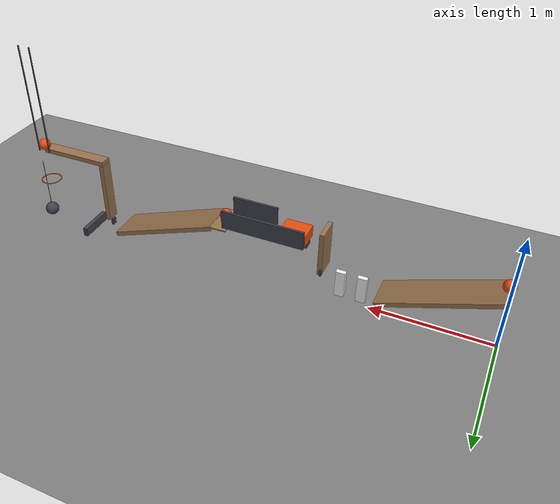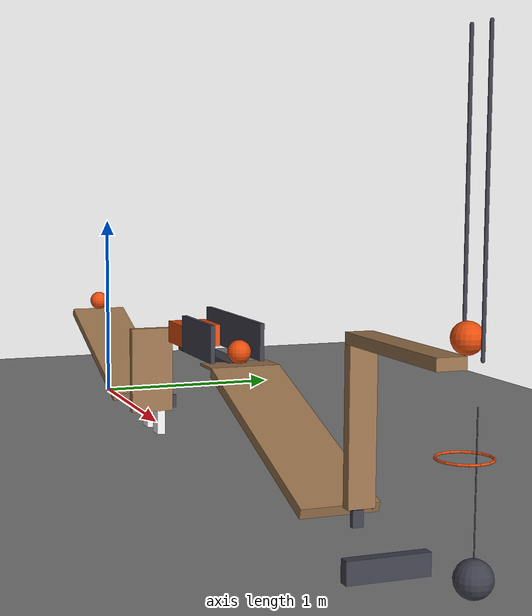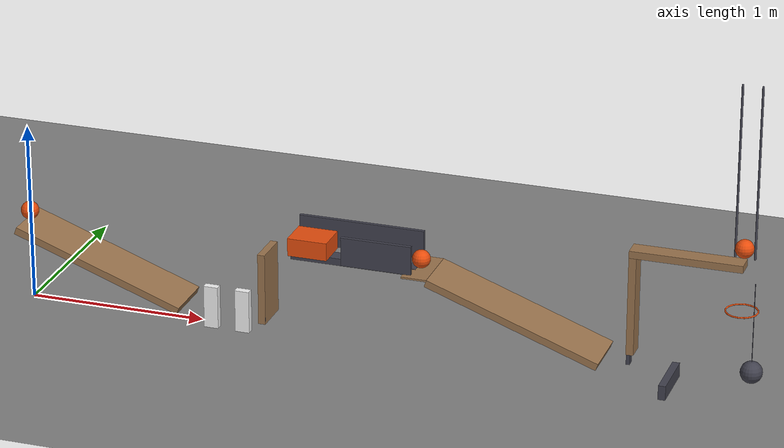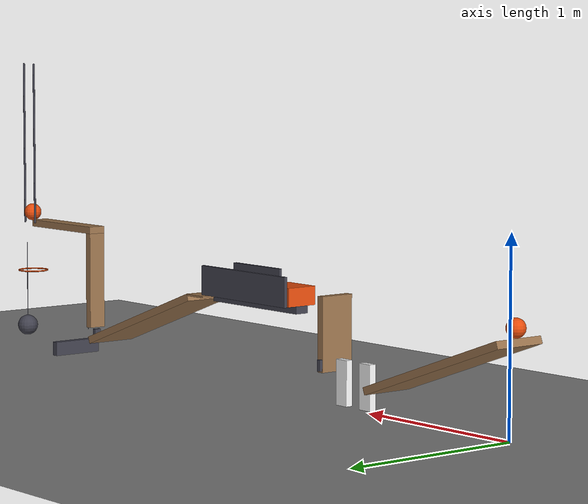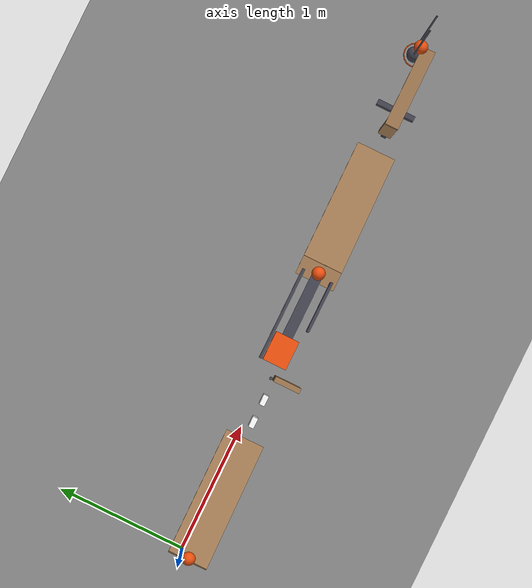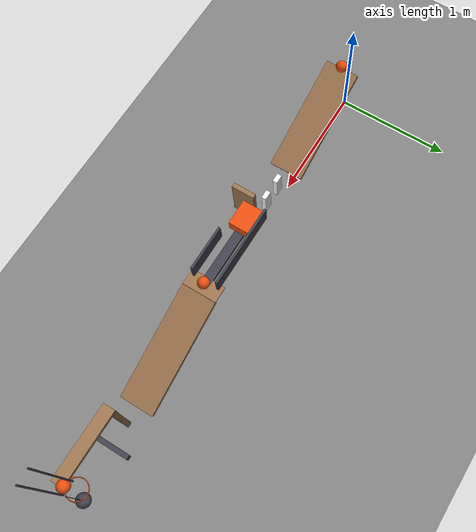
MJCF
<mujoco model="gravity_chain_catch_revision">
  <compiler angle="radian"/>
  <option timestep="0.002"/>
  <worldbody>
    <geom name="floor" type="plane" size="10 10 0.1" friction="0.7 0 0.002"/>
    <body name="ramp1">
      <geom name="ramp1" type="box" pos="0.469846 -0.06 0.302216" size="0.5 0.15 0.02" euler="0 0.349066 0" friction="0.7 0 0.002" solref="0.01 1" rgba="0.6 0.45 0.3 1"/>
    </body>
    <body name="ball1" pos="0.0239414 -0.06 0.539005">
      <freejoint/>
      <geom name="ball1" type="sphere" pos="0 0 0" size="0.05" mass="0.2" condim="6" friction="0.7 0 0.002" solref="0.01 1" rgba="0.9 0.3 0.05 1"/>
    </body>
    <body name="domino1" pos="1.07969 -0.06 0.12">
      <freejoint/>
      <geom name="domino1" type="box" pos="0 0 0" size="0.04 0.02 0.12" mass="0.25" friction="0.7 0 0.002" solref="0.01 1" rgba="0.95 0.95 0.95 1"/>
    </body>
    <body name="domino2" pos="1.25969 -0.06 0.12">
      <freejoint/>
      <geom name="domino2" type="box" pos="0 0 0" size="0.04 0.02 0.12" mass="0.25" friction="0.7 0 0.002" solref="0.01 1" rgba="0.95 0.95 0.95 1"/>
    </body>
    <body name="flap1" pos="1.43969 -0.15 0.55">
      <joint name="flap_hinge" type="hinge" pos="0 0 0" axis="0 1 0" limited="true" range="-1.13446 0.0872665" stiffness="12" springref="-1.13446" damping="0.04"/>
      <geom name="flap1" type="box" pos="0 0 -0.2" size="0.02 0.1 0.2" mass="0.3" friction="0.7 0 0.002" solref="0.01 1" rgba="0.6 0.45 0.3 1"/>
    </body>
    <body name="flap catch" pos="1.45469 -0.2497 0.18">
      <joint name="flap_catch_hinge" type="hinge" pos="0 0 0" axis="0 0 1" limited="true" range="-0.698132 0" damping="0.04"/>
      <geom name="flap catch" type="box" pos="-0.029 0.2147 0.01" size="0.01 0.01 0.03" mass="0.025" friction="0.7 0 0.002" solref="0.01 1" rgba="0.25 0.25 0.3 1"/>
      <geom name="flap catch finger" type="box" pos="0.006 -0.0012 0" size="0.001 0.001 0.01" mass="0.005" friction="0.7 0 0.002" solref="0.01 1" rgba="0.25 0.25 0.3 1"/>
    </body>
    <body name="cart track">
      <geom name="cart track" type="box" pos="1.87969 0 0.47402" size="0.35 0.04 0.02" friction="0.7 0 0.002" solref="0.01 1" rgba="0.25 0.25 0.3 1"/>
    </body>
    <body name="cart left guide">
      <geom name="cart left guide" type="box" pos="1.87969 0.11 0.57402" size="0.35 0.01 0.08" friction="0.7 0 0.002" solref="0.01 1" rgba="0.25 0.25 0.3 1"/>
    </body>
    <body name="cart right guide">
      <geom name="cart right guide" type="box" pos="2.03469 -0.11 0.57402" size="0.195 0.01 0.08" friction="0.7 0 0.002" solref="0.01 1" rgba="0.25 0.25 0.3 1"/>
    </body>
    <body name="cart1" pos="1.63969 0 0.54402">
      <freejoint/>
      <geom name="cart1" type="box" pos="0 0 0" size="0.11 0.09 0.05" mass="0.5" friction="0.7 0 0.002" solref="0.01 1" rgba="0.9 0.3 0.05 1"/>
    </body>
    <body name="ramp2">
      <geom name="ramp2" type="box" pos="2.78954 0 0.302216" size="0.5 0.15 0.02" euler="0 0.349066 0" friction="0.7 0 0.002" solref="0.01 1" rgba="0.6 0.45 0.3 1"/>
    </body>
    <body name="ball2 perch">
      <geom name="ball2 perch" type="box" pos="2.25469 0 0.48702" size="0.07 0.15 0.005" friction="0.7 0 0.002" solref="0.01 1" rgba="0.6 0.45 0.3 1"/>
    </body>
    <body name="ball2" pos="2.24969 0 0.54202">
      <freejoint/>
      <geom name="ball2" type="sphere" pos="0 0 0" size="0.05" mass="0.2" condim="6" friction="0.7 0 0.002" solref="0.01 1" rgba="0.9 0.3 0.05 1"/>
    </body>
    <body name="lever1" pos="3.68623 0 0.75">
      <joint name="lever_hinge" type="hinge" pos="0 0 0" axis="0 1 0" limited="true" range="-0.785398 0" stiffness="4" springref="-0.785398" damping="0.04"/>
      <geom name="lever1" type="box" pos="0 0 0" size="0.3 0.05 0.02" mass="0.495" friction="0.7 0 0.002" solref="0.01 1" rgba="0.6 0.45 0.3 1"/>
      <geom name="lever striker" type="box" pos="-0.28 0 -0.295" size="0.02 0.05 0.275" mass="0.005" friction="0.7 0 0.002" solref="0.01 1" rgba="0.6 0.45 0.3 1"/>
    </body>
    <body name="lever catch" pos="3.39123 0.051 0.14">
      <joint name="lever_catch_hinge" type="hinge" pos="0 0 0" axis="0 0 1" limited="true" range="0 1.5708" damping="0.04"/>
      <geom name="lever catch" type="box" pos="0 -0.051 0" size="0.01 0.02 0.03" mass="0.015" friction="0.7 0 0.002" solref="0.01 1" rgba="0.25 0.25 0.3 1"/>
      <geom name="lever catch finger" type="box" pos="0.015 -0.0005 0.035" size="0.002 0.001 0.005" mass="0.005" friction="0.7 0 0.002" solref="0.01 1" rgba="0.25 0.25 0.3 1"/>
    </body>
    <body name="ball2 arrest wall">
      <geom name="ball2 arrest wall" type="box" pos="3.61 0 0.04" size="0.02 0.15 0.04" friction="0.7 0 0.002" solref="0.01 1" rgba="0.25 0.25 0.3 1"/>
    </body>
    <body name="launch left guide">
      <geom name="launch left guide" type="capsule" size="0.006" fromto="3.91392 0.08 0.76 3.91392 0.08 1.7" friction="0.7 0 0.002" solref="0.01 1" rgba="0.25 0.25 0.3 1"/>
    </body>
    <body name="launch right guide">
      <geom name="launch right guide" type="capsule" size="0.006" fromto="4.01853 0.08 0.76 4.01853 0.08 1.7" friction="0.7 0 0.002" solref="0.01 1" rgba="0.25 0.25 0.3 1"/>
    </body>
    <body name="ball3" pos="3.96623 0.06 0.81899">
      <freejoint/>
      <geom name="ball3" type="sphere" pos="0 0 0" size="0.05" mass="0.2" condim="6" friction="0.7 0 0.002" solref="0.01 1" rgba="0.9 0.3 0.05 1"/>
    </body>
    <body name="ring1">
      <geom name="ring1_rim_00" type="capsule" size="0.004" fromto="4.05187 0.06 0.46899 4.04535 0.0927752 0.46899" friction="0.7 0 0.002" solref="0.01 1" rgba="0.9 0.3 0.05 1"/>
      <geom name="ring1_rim_01" type="capsule" size="0.004" fromto="4.04535 0.0927752 0.46899 4.02679 0.120561 0.46899" friction="0.7 0 0.002" solref="0.01 1" rgba="0.9 0.3 0.05 1"/>
      <geom name="ring1_rim_02" type="capsule" size="0.004" fromto="4.02679 0.120561 0.46899 3.999 0.139126 0.46899" friction="0.7 0 0.002" solref="0.01 1" rgba="0.9 0.3 0.05 1"/>
      <geom name="ring1_rim_03" type="capsule" size="0.004" fromto="3.999 0.139126 0.46899 3.96623 0.145646 0.46899" friction="0.7 0 0.002" solref="0.01 1" rgba="0.9 0.3 0.05 1"/>
      <geom name="ring1_rim_04" type="capsule" size="0.004" fromto="3.96623 0.145646 0.46899 3.93345 0.139126 0.46899" friction="0.7 0 0.002" solref="0.01 1" rgba="0.9 0.3 0.05 1"/>
      <geom name="ring1_rim_05" type="capsule" size="0.004" fromto="3.93345 0.139126 0.46899 3.90567 0.120561 0.46899" friction="0.7 0 0.002" solref="0.01 1" rgba="0.9 0.3 0.05 1"/>
      <geom name="ring1_rim_06" type="capsule" size="0.004" fromto="3.90567 0.120561 0.46899 3.8871 0.0927752 0.46899" friction="0.7 0 0.002" solref="0.01 1" rgba="0.9 0.3 0.05 1"/>
      <geom name="ring1_rim_07" type="capsule" size="0.004" fromto="3.8871 0.0927752 0.46899 3.88058 0.06 0.46899" friction="0.7 0 0.002" solref="0.01 1" rgba="0.9 0.3 0.05 1"/>
      <geom name="ring1_rim_08" type="capsule" size="0.004" fromto="3.88058 0.06 0.46899 3.8871 0.0272248 0.46899" friction="0.7 0 0.002" solref="0.01 1" rgba="0.9 0.3 0.05 1"/>
      <geom name="ring1_rim_09" type="capsule" size="0.004" fromto="3.8871 0.0272248 0.46899 3.90567 -0.000560625 0.46899" friction="0.7 0 0.002" solref="0.01 1" rgba="0.9 0.3 0.05 1"/>
      <geom name="ring1_rim_10" type="capsule" size="0.004" fromto="3.90567 -0.000560625 0.46899 3.93345 -0.0191263 0.46899" friction="0.7 0 0.002" solref="0.01 1" rgba="0.9 0.3 0.05 1"/>
      <geom name="ring1_rim_11" type="capsule" size="0.004" fromto="3.93345 -0.0191263 0.46899 3.96623 -0.0256457 0.46899" friction="0.7 0 0.002" solref="0.01 1" rgba="0.9 0.3 0.05 1"/>
      <geom name="ring1_rim_12" type="capsule" size="0.004" fromto="3.96623 -0.0256457 0.46899 3.999 -0.0191263 0.46899" friction="0.7 0 0.002" solref="0.01 1" rgba="0.9 0.3 0.05 1"/>
      <geom name="ring1_rim_13" type="capsule" size="0.004" fromto="3.999 -0.0191263 0.46899 4.02679 -0.000560625 0.46899" friction="0.7 0 0.002" solref="0.01 1" rgba="0.9 0.3 0.05 1"/>
      <geom name="ring1_rim_14" type="capsule" size="0.004" fromto="4.02679 -0.000560625 0.46899 4.04535 0.0272248 0.46899" friction="0.7 0 0.002" solref="0.01 1" rgba="0.9 0.3 0.05 1"/>
      <geom name="ring1_rim_15" type="capsule" size="0.004" fromto="4.04535 0.0272248 0.46899 4.05187 0.06 0.46899" friction="0.7 0 0.002" solref="0.01 1" rgba="0.9 0.3 0.05 1"/>
    </body>
    <body name="pendulum1" pos="4.03123 0.06 0.630249">
      <joint name="pendulum_hinge" type="hinge" pos="0 0 0" axis="0 1 0" limited="true" range="-1.5708 1.5708" damping="0.04"/>
      <geom name="pendulum1_bob" type="sphere" pos="0 0 -0.5" size="0.06" mass="0.34" friction="0.7 0 0.002" solref="0.01 1" rgba="0.25 0.25 0.3 1"/>
      <geom name="pendulum1_rod" type="capsule" size="0.002" fromto="0 0 0 0 0 -0.44" mass="0.01" friction="0.7 0 0.002" solref="0.01 1" rgba="0.25 0.25 0.3 1"/>
    </body>
  </worldbody>
  <keyframe>
    <key name="start" qpos="0.0239414 -0.06 0.539005 1 0 0 0 1.07969 -0.06 0.12 1 0 0 0 1.25969 -0.06 0.12 1 0 0 0 0 0 1.63969 0 0.54402 1 0 0 0 2.24969 0 0.54202 1 0 0 0 0 0 3.96623 0.06 0.81899 1 0 0 0 0" qvel="0 0 0 0 0 0 0 0 0 0 0 0 0 0 0 0 0 0 0 0 0 0 0 0 0 0 0 0 0 0 0 0 0 0 0 0 0 0 0 0 0"/>
  </keyframe>
</mujoco>
